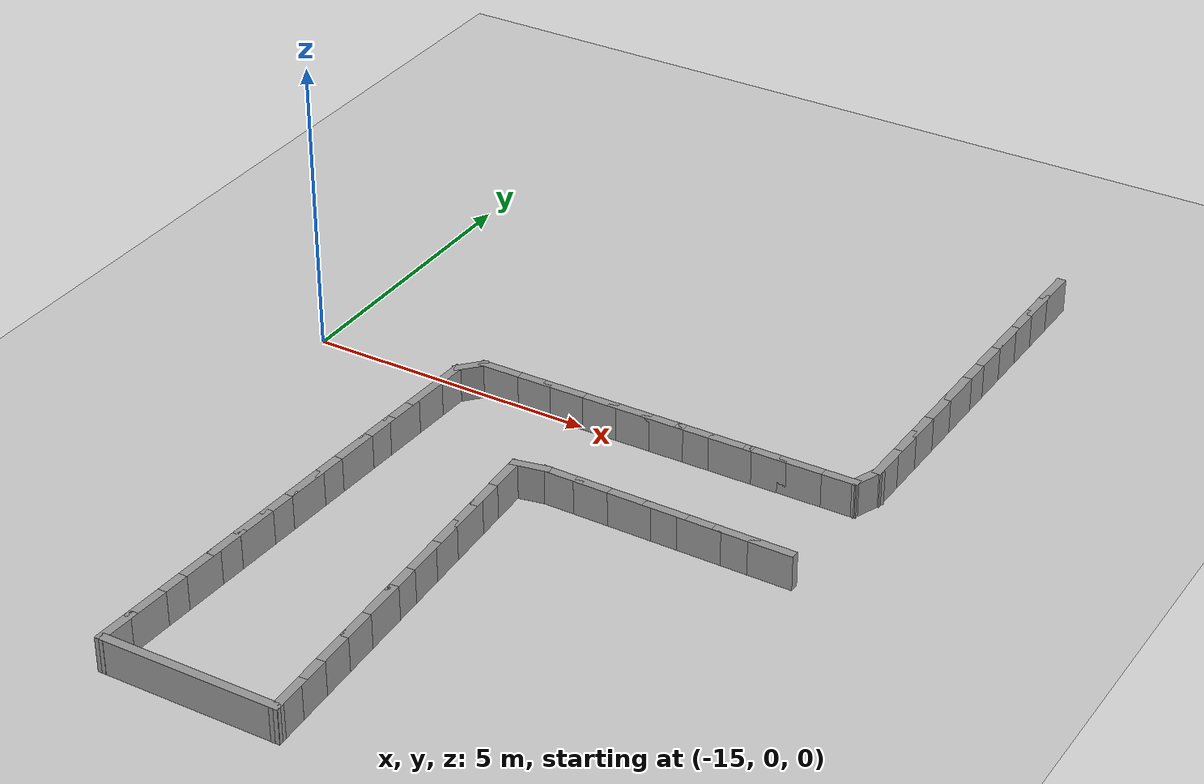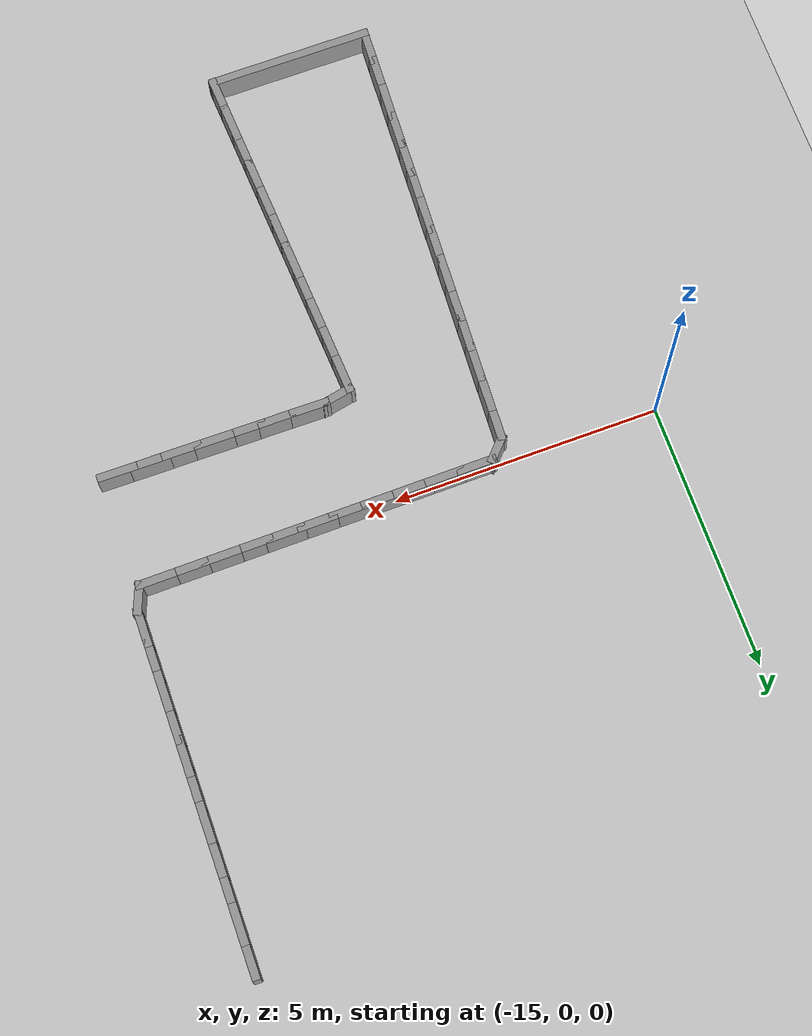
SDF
<sdf version="1.7">
 <world name="default">
  <model name="ground_plane">
   <static>1</static>
   <link name="link">
    <collision name="collision">
     <geometry><plane><normal>0 0 1</normal><size>100 100</size></plane></geometry>
     <surface><friction><ode><mu>100</mu><mu2>50</mu2></ode></friction></surface>
    </collision>
    <visual name="visual">
     <cast_shadows>0</cast_shadows>
     <geometry><plane><normal>0 0 1</normal><size>100 100</size></plane></geometry>
     <material>
      <script><uri>file://media/materials/scripts/gazebo.material</uri><name>Gazebo/Grey</name></script>
     </material>
    </visual>
   </link>
  </model>
  <model name="maze_corridor_easy">
   <link name="Wall_0">
    <collision name="Wall_0_Collision">
     <geometry><box><size>0.7500 0.1500 0.6000</size></box></geometry>
     <pose>0 0 0.3000 0 -0 0</pose>
    </collision>
    <visual name="Wall_0_Visual">
     <pose>0 0 0.3000 0 -0 0</pose>
     <geometry><box><size>0.7500 0.1500 0.6000</size></box></geometry>
     <material>
      <script><uri>file://media/materials/scripts/gazebo.material</uri><name>Gazebo/Grey</name></script>
      <ambient>1 1 1 1</ambient>
     </material>
    </visual>
    <pose>-12.4866 -8.4003 0 0 -0 1.52603</pose>
   </link>
   <link name="Wall_1">
    <collision name="Wall_1_Collision">
     <geometry><box><size>0.7500 0.1500 0.6000</size></box></geometry>
     <pose>0 0 0.3000 0 -0 0</pose>
    </collision>
    <visual name="Wall_1_Visual">
     <pose>0 0 0.3000 0 -0 0</pose>
     <geometry><box><size>0.7500 0.1500 0.6000</size></box></geometry>
     <material>
      <script><uri>file://media/materials/scripts/gazebo.material</uri><name>Gazebo/Grey</name></script>
      <ambient>1 1 1 1</ambient>
     </material>
    </visual>
    <pose>-12.4597 -7.8009 0 0 -0 1.52603</pose>
   </link>
   <link name="Wall_2">
    <collision name="Wall_2_Collision">
     <geometry><box><size>0.7500 0.1500 0.6000</size></box></geometry>
     <pose>0 0 0.3000 0 -0 0</pose>
    </collision>
    <visual name="Wall_2_Visual">
     <pose>0 0 0.3000 0 -0 0</pose>
     <geometry><box><size>0.7500 0.1500 0.6000</size></box></geometry>
     <material>
      <script><uri>file://media/materials/scripts/gazebo.material</uri><name>Gazebo/Grey</name></script>
      <ambient>1 1 1 1</ambient>
     </material>
    </visual>
    <pose>-12.4329 -7.2015 0 0 -0 1.52603</pose>
   </link>
   <link name="Wall_3">
    <collision name="Wall_3_Collision">
     <geometry><box><size>0.7500 0.1500 0.6000</size></box></geometry>
     <pose>0 0 0.3000 0 -0 0</pose>
    </collision>
    <visual name="Wall_3_Visual">
     <pose>0 0 0.3000 0 -0 0</pose>
     <geometry><box><size>0.7500 0.1500 0.6000</size></box></geometry>
     <material>
      <script><uri>file://media/materials/scripts/gazebo.material</uri><name>Gazebo/Grey</name></script>
      <ambient>1 1 1 1</ambient>
     </material>
    </visual>
    <pose>-12.4060 -6.6021 0 0 -0 1.52603</pose>
   </link>
   <link name="Wall_4">
    <collision name="Wall_4_Collision">
     <geometry><box><size>0.7500 0.1500 0.6000</size></box></geometry>
     <pose>0 0 0.3000 0 -0 0</pose>
    </collision>
    <visual name="Wall_4_Visual">
     <pose>0 0 0.3000 0 -0 0</pose>
     <geometry><box><size>0.7500 0.1500 0.6000</size></box></geometry>
     <material>
      <script><uri>file://media/materials/scripts/gazebo.material</uri><name>Gazebo/Grey</name></script>
      <ambient>1 1 1 1</ambient>
     </material>
    </visual>
    <pose>-12.3792 -6.0027 0 0 -0 1.52603</pose>
   </link>
   <link name="Wall_5">
    <collision name="Wall_5_Collision">
     <geometry><box><size>0.7500 0.1500 0.6000</size></box></geometry>
     <pose>0 0 0.3000 0 -0 0</pose>
    </collision>
    <visual name="Wall_5_Visual">
     <pose>0 0 0.3000 0 -0 0</pose>
     <geometry><box><size>0.7500 0.1500 0.6000</size></box></geometry>
     <material>
      <script><uri>file://media/materials/scripts/gazebo.material</uri><name>Gazebo/Grey</name></script>
      <ambient>1 1 1 1</ambient>
     </material>
    </visual>
    <pose>-12.3523 -5.4033 0 0 -0 1.52603</pose>
   </link>
   <link name="Wall_6">
    <collision name="Wall_6_Collision">
     <geometry><box><size>0.7500 0.1500 0.6000</size></box></geometry>
     <pose>0 0 0.3000 0 -0 0</pose>
    </collision>
    <visual name="Wall_6_Visual">
     <pose>0 0 0.3000 0 -0 0</pose>
     <geometry><box><size>0.7500 0.1500 0.6000</size></box></geometry>
     <material>
      <script><uri>file://media/materials/scripts/gazebo.material</uri><name>Gazebo/Grey</name></script>
      <ambient>1 1 1 1</ambient>
     </material>
    </visual>
    <pose>-12.3255 -4.8039 0 0 -0 1.52603</pose>
   </link>
   <link name="Wall_7">
    <collision name="Wall_7_Collision">
     <geometry><box><size>0.7500 0.1500 0.6000</size></box></geometry>
     <pose>0 0 0.3000 0 -0 0</pose>
    </collision>
    <visual name="Wall_7_Visual">
     <pose>0 0 0.3000 0 -0 0</pose>
     <geometry><box><size>0.7500 0.1500 0.6000</size></box></geometry>
     <material>
      <script><uri>file://media/materials/scripts/gazebo.material</uri><name>Gazebo/Grey</name></script>
      <ambient>1 1 1 1</ambient>
     </material>
    </visual>
    <pose>-12.2986 -4.2045 0 0 -0 1.52603</pose>
   </link>
   <link name="Wall_8">
    <collision name="Wall_8_Collision">
     <geometry><box><size>0.7500 0.1500 0.6000</size></box></geometry>
     <pose>0 0 0.3000 0 -0 0</pose>
    </collision>
    <visual name="Wall_8_Visual">
     <pose>0 0 0.3000 0 -0 0</pose>
     <geometry><box><size>0.7500 0.1500 0.6000</size></box></geometry>
     <material>
      <script><uri>file://media/materials/scripts/gazebo.material</uri><name>Gazebo/Grey</name></script>
      <ambient>1 1 1 1</ambient>
     </material>
    </visual>
    <pose>-12.2718 -3.6051 0 0 -0 1.52603</pose>
   </link>
   <link name="Wall_9">
    <collision name="Wall_9_Collision">
     <geometry><box><size>0.7500 0.1500 0.6000</size></box></geometry>
     <pose>0 0 0.3000 0 -0 0</pose>
    </collision>
    <visual name="Wall_9_Visual">
     <pose>0 0 0.3000 0 -0 0</pose>
     <geometry><box><size>0.7500 0.1500 0.6000</size></box></geometry>
     <material>
      <script><uri>file://media/materials/scripts/gazebo.material</uri><name>Gazebo/Grey</name></script>
      <ambient>1 1 1 1</ambient>
     </material>
    </visual>
    <pose>-12.2449 -3.0057 0 0 -0 1.52603</pose>
   </link>
   <link name="Wall_10">
    <collision name="Wall_10_Collision">
     <geometry><box><size>0.7500 0.1500 0.6000</size></box></geometry>
     <pose>0 0 0.3000 0 -0 0</pose>
    </collision>
    <visual name="Wall_10_Visual">
     <pose>0 0 0.3000 0 -0 0</pose>
     <geometry><box><size>0.7500 0.1500 0.6000</size></box></geometry>
     <material>
      <script><uri>file://media/materials/scripts/gazebo.material</uri><name>Gazebo/Grey</name></script>
      <ambient>1 1 1 1</ambient>
     </material>
    </visual>
    <pose>-12.2181 -2.4063 0 0 -0 1.52603</pose>
   </link>
   <link name="Wall_11">
    <collision name="Wall_11_Collision">
     <geometry><box><size>0.7500 0.1500 0.6000</size></box></geometry>
     <pose>0 0 0.3000 0 -0 0</pose>
    </collision>
    <visual name="Wall_11_Visual">
     <pose>0 0 0.3000 0 -0 0</pose>
     <geometry><box><size>0.7500 0.1500 0.6000</size></box></geometry>
     <material>
      <script><uri>file://media/materials/scripts/gazebo.material</uri><name>Gazebo/Grey</name></script>
      <ambient>1 1 1 1</ambient>
     </material>
    </visual>
    <pose>-12.1912 -1.8069 0 0 -0 1.52603</pose>
   </link>
   <link name="Wall_12">
    <collision name="Wall_12_Collision">
     <geometry><box><size>0.7500 0.1500 0.6000</size></box></geometry>
     <pose>0 0 0.3000 0 -0 0</pose>
    </collision>
    <visual name="Wall_12_Visual">
     <pose>0 0 0.3000 0 -0 0</pose>
     <geometry><box><size>0.7500 0.1500 0.6000</size></box></geometry>
     <material>
      <script><uri>file://media/materials/scripts/gazebo.material</uri><name>Gazebo/Grey</name></script>
      <ambient>1 1 1 1</ambient>
     </material>
    </visual>
    <pose>-12.1644 -1.2075 0 0 -0 1.52603</pose>
   </link>
   <link name="Wall_13">
    <collision name="Wall_13_Collision">
     <geometry><box><size>0.7500 0.1500 0.6000</size></box></geometry>
     <pose>0 0 0.3000 0 -0 0</pose>
    </collision>
    <visual name="Wall_13_Visual">
     <pose>0 0 0.3000 0 -0 0</pose>
     <geometry><box><size>0.7500 0.1500 0.6000</size></box></geometry>
     <material>
      <script><uri>file://media/materials/scripts/gazebo.material</uri><name>Gazebo/Grey</name></script>
      <ambient>1 1 1 1</ambient>
     </material>
    </visual>
    <pose>-12.1376 -0.6081 0 0 -0 1.52603</pose>
   </link>
   <link name="Wall_14">
    <collision name="Wall_14_Collision">
     <geometry><box><size>0.5859 0.1500 0.6000</size></box></geometry>
     <pose>0 0 0.3000 0 -0 0</pose>
    </collision>
    <visual name="Wall_14_Visual">
     <pose>0 0 0.3000 0 -0 0</pose>
     <geometry><box><size>0.5859 0.1500 0.6000</size></box></geometry>
     <material>
      <script><uri>file://media/materials/scripts/gazebo.material</uri><name>Gazebo/Grey</name></script>
      <ambient>1 1 1 1</ambient>
     </material>
    </visual>
    <pose>-11.9759 -0.1487 0 0 -0 0.82276</pose>
   </link>
   <link name="Wall_15">
    <collision name="Wall_15_Collision">
     <geometry><box><size>0.7500 0.1500 0.6000</size></box></geometry>
     <pose>0 0 0.3000 0 -0 0</pose>
    </collision>
    <visual name="Wall_15_Visual">
     <pose>0 0 0.3000 0 -0 0</pose>
     <geometry><box><size>0.7500 0.1500 0.6000</size></box></geometry>
     <material>
      <script><uri>file://media/materials/scripts/gazebo.material</uri><name>Gazebo/Grey</name></script>
      <ambient>1 1 1 1</ambient>
     </material>
    </visual>
    <pose>-11.5277 0.0133 0 0 -0 0.00733</pose>
   </link>
   <link name="Wall_16">
    <collision name="Wall_16_Collision">
     <geometry><box><size>0.7500 0.1500 0.6000</size></box></geometry>
     <pose>0 0 0.3000 0 -0 0</pose>
    </collision>
    <visual name="Wall_16_Visual">
     <pose>0 0 0.3000 0 -0 0</pose>
     <geometry><box><size>0.7500 0.1500 0.6000</size></box></geometry>
     <material>
      <script><uri>file://media/materials/scripts/gazebo.material</uri><name>Gazebo/Grey</name></script>
      <ambient>1 1 1 1</ambient>
     </material>
    </visual>
    <pose>-10.9277 0.0177 0 0 -0 0.00733</pose>
   </link>
   <link name="Wall_17">
    <collision name="Wall_17_Collision">
     <geometry><box><size>0.7500 0.1500 0.6000</size></box></geometry>
     <pose>0 0 0.3000 0 -0 0</pose>
    </collision>
    <visual name="Wall_17_Visual">
     <pose>0 0 0.3000 0 -0 0</pose>
     <geometry><box><size>0.7500 0.1500 0.6000</size></box></geometry>
     <material>
      <script><uri>file://media/materials/scripts/gazebo.material</uri><name>Gazebo/Grey</name></script>
      <ambient>1 1 1 1</ambient>
     </material>
    </visual>
    <pose>-10.3277 0.0221 0 0 -0 0.00733</pose>
   </link>
   <link name="Wall_18">
    <collision name="Wall_18_Collision">
     <geometry><box><size>0.7500 0.1500 0.6000</size></box></geometry>
     <pose>0 0 0.3000 0 -0 0</pose>
    </collision>
    <visual name="Wall_18_Visual">
     <pose>0 0 0.3000 0 -0 0</pose>
     <geometry><box><size>0.7500 0.1500 0.6000</size></box></geometry>
     <material>
      <script><uri>file://media/materials/scripts/gazebo.material</uri><name>Gazebo/Grey</name></script>
      <ambient>1 1 1 1</ambient>
     </material>
    </visual>
    <pose>-9.7277 0.0265 0 0 -0 0.00733</pose>
   </link>
   <link name="Wall_19">
    <collision name="Wall_19_Collision">
     <geometry><box><size>0.7500 0.1500 0.6000</size></box></geometry>
     <pose>0 0 0.3000 0 -0 0</pose>
    </collision>
    <visual name="Wall_19_Visual">
     <pose>0 0 0.3000 0 -0 0</pose>
     <geometry><box><size>0.7500 0.1500 0.6000</size></box></geometry>
     <material>
      <script><uri>file://media/materials/scripts/gazebo.material</uri><name>Gazebo/Grey</name></script>
      <ambient>1 1 1 1</ambient>
     </material>
    </visual>
    <pose>-9.1277 0.0309 0 0 -0 0.00733</pose>
   </link>
   <link name="Wall_20">
    <collision name="Wall_20_Collision">
     <geometry><box><size>0.7500 0.1500 0.6000</size></box></geometry>
     <pose>0 0 0.3000 0 -0 0</pose>
    </collision>
    <visual name="Wall_20_Visual">
     <pose>0 0 0.3000 0 -0 0</pose>
     <geometry><box><size>0.7500 0.1500 0.6000</size></box></geometry>
     <material>
      <script><uri>file://media/materials/scripts/gazebo.material</uri><name>Gazebo/Grey</name></script>
      <ambient>1 1 1 1</ambient>
     </material>
    </visual>
    <pose>-8.5277 0.0353 0 0 -0 0.00733</pose>
   </link>
   <link name="Wall_21">
    <collision name="Wall_21_Collision">
     <geometry><box><size>0.7500 0.1500 0.6000</size></box></geometry>
     <pose>0 0 0.3000 0 -0 0</pose>
    </collision>
    <visual name="Wall_21_Visual">
     <pose>0 0 0.3000 0 -0 0</pose>
     <geometry><box><size>0.7500 0.1500 0.6000</size></box></geometry>
     <material>
      <script><uri>file://media/materials/scripts/gazebo.material</uri><name>Gazebo/Grey</name></script>
      <ambient>1 1 1 1</ambient>
     </material>
    </visual>
    <pose>-7.9278 0.0397 0 0 -0 0.00733</pose>
   </link>
   <link name="Wall_22">
    <collision name="Wall_22_Collision">
     <geometry><box><size>0.7500 0.1500 0.6000</size></box></geometry>
     <pose>0 0 0.3000 0 -0 0</pose>
    </collision>
    <visual name="Wall_22_Visual">
     <pose>0 0 0.3000 0 -0 0</pose>
     <geometry><box><size>0.7500 0.1500 0.6000</size></box></geometry>
     <material>
      <script><uri>file://media/materials/scripts/gazebo.material</uri><name>Gazebo/Grey</name></script>
      <ambient>1 1 1 1</ambient>
     </material>
    </visual>
    <pose>-7.3278 0.0440 0 0 -0 0.00733</pose>
   </link>
   <link name="Wall_23">
    <collision name="Wall_23_Collision">
     <geometry><box><size>0.7500 0.1500 0.6000</size></box></geometry>
     <pose>0 0 0.3000 0 -0 0</pose>
    </collision>
    <visual name="Wall_23_Visual">
     <pose>0 0 0.3000 0 -0 0</pose>
     <geometry><box><size>0.7500 0.1500 0.6000</size></box></geometry>
     <material>
      <script><uri>file://media/materials/scripts/gazebo.material</uri><name>Gazebo/Grey</name></script>
      <ambient>1 1 1 1</ambient>
     </material>
    </visual>
    <pose>-6.7278 0.0484 0 0 -0 0.00733</pose>
   </link>
   <link name="Wall_24">
    <collision name="Wall_24_Collision">
     <geometry><box><size>0.7500 0.1500 0.6000</size></box></geometry>
     <pose>0 0 0.3000 0 -0 0</pose>
    </collision>
    <visual name="Wall_24_Visual">
     <pose>0 0 0.3000 0 -0 0</pose>
     <geometry><box><size>0.7500 0.1500 0.6000</size></box></geometry>
     <material>
      <script><uri>file://media/materials/scripts/gazebo.material</uri><name>Gazebo/Grey</name></script>
      <ambient>1 1 1 1</ambient>
     </material>
    </visual>
    <pose>-6.1278 0.0528 0 0 -0 0.00733</pose>
   </link>
   <link name="Wall_25">
    <collision name="Wall_25_Collision">
     <geometry><box><size>0.7500 0.1500 0.6000</size></box></geometry>
     <pose>0 0 0.3000 0 -0 0</pose>
    </collision>
    <visual name="Wall_25_Visual">
     <pose>0 0 0.3000 0 -0 0</pose>
     <geometry><box><size>0.7500 0.1500 0.6000</size></box></geometry>
     <material>
      <script><uri>file://media/materials/scripts/gazebo.material</uri><name>Gazebo/Grey</name></script>
      <ambient>1 1 1 1</ambient>
     </material>
    </visual>
    <pose>-5.5278 0.0572 0 0 -0 0.00733</pose>
   </link>
   <link name="Wall_26">
    <collision name="Wall_26_Collision">
     <geometry><box><size>0.6167 0.1500 0.6000</size></box></geometry>
     <pose>0 0 0.3000 0 -0 0</pose>
    </collision>
    <visual name="Wall_26_Visual">
     <pose>0 0 0.3000 0 -0 0</pose>
     <geometry><box><size>0.6167 0.1500 0.6000</size></box></geometry>
     <material>
      <script><uri>file://media/materials/scripts/gazebo.material</uri><name>Gazebo/Grey</name></script>
      <ambient>1 1 1 1</ambient>
     </material>
    </visual>
    <pose>-5.1420 0.2764 0 0 -0 1.19421</pose>
   </link>
   <link name="Wall_27">
    <collision name="Wall_27_Collision">
     <geometry><box><size>0.7500 0.1500 0.6000</size></box></geometry>
     <pose>0 0 0.3000 0 -0 0</pose>
    </collision>
    <visual name="Wall_27_Visual">
     <pose>0 0 0.3000 0 -0 0</pose>
     <geometry><box><size>0.7500 0.1500 0.6000</size></box></geometry>
     <material>
      <script><uri>file://media/materials/scripts/gazebo.material</uri><name>Gazebo/Grey</name></script>
      <ambient>1 1 1 1</ambient>
     </material>
    </visual>
    <pose>-5.0531 0.7934 0 0 -0 1.56048</pose>
   </link>
   <link name="Wall_28">
    <collision name="Wall_28_Collision">
     <geometry><box><size>0.7500 0.1500 0.6000</size></box></geometry>
     <pose>0 0 0.3000 0 -0 0</pose>
    </collision>
    <visual name="Wall_28_Visual">
     <pose>0 0 0.3000 0 -0 0</pose>
     <geometry><box><size>0.7500 0.1500 0.6000</size></box></geometry>
     <material>
      <script><uri>file://media/materials/scripts/gazebo.material</uri><name>Gazebo/Grey</name></script>
      <ambient>1 1 1 1</ambient>
     </material>
    </visual>
    <pose>-5.0469 1.3934 0 0 -0 1.56048</pose>
   </link>
   <link name="Wall_29">
    <collision name="Wall_29_Collision">
     <geometry><box><size>0.7500 0.1500 0.6000</size></box></geometry>
     <pose>0 0 0.3000 0 -0 0</pose>
    </collision>
    <visual name="Wall_29_Visual">
     <pose>0 0 0.3000 0 -0 0</pose>
     <geometry><box><size>0.7500 0.1500 0.6000</size></box></geometry>
     <material>
      <script><uri>file://media/materials/scripts/gazebo.material</uri><name>Gazebo/Grey</name></script>
      <ambient>1 1 1 1</ambient>
     </material>
    </visual>
    <pose>-5.0407 1.9934 0 0 -0 1.56048</pose>
   </link>
   <link name="Wall_30">
    <collision name="Wall_30_Collision">
     <geometry><box><size>0.7500 0.1500 0.6000</size></box></geometry>
     <pose>0 0 0.3000 0 -0 0</pose>
    </collision>
    <visual name="Wall_30_Visual">
     <pose>0 0 0.3000 0 -0 0</pose>
     <geometry><box><size>0.7500 0.1500 0.6000</size></box></geometry>
     <material>
      <script><uri>file://media/materials/scripts/gazebo.material</uri><name>Gazebo/Grey</name></script>
      <ambient>1 1 1 1</ambient>
     </material>
    </visual>
    <pose>-5.0345 2.5933 0 0 -0 1.56048</pose>
   </link>
   <link name="Wall_31">
    <collision name="Wall_31_Collision">
     <geometry><box><size>0.7500 0.1500 0.6000</size></box></geometry>
     <pose>0 0 0.3000 0 -0 0</pose>
    </collision>
    <visual name="Wall_31_Visual">
     <pose>0 0 0.3000 0 -0 0</pose>
     <geometry><box><size>0.7500 0.1500 0.6000</size></box></geometry>
     <material>
      <script><uri>file://media/materials/scripts/gazebo.material</uri><name>Gazebo/Grey</name></script>
      <ambient>1 1 1 1</ambient>
     </material>
    </visual>
    <pose>-5.0283 3.1933 0 0 -0 1.56048</pose>
   </link>
   <link name="Wall_32">
    <collision name="Wall_32_Collision">
     <geometry><box><size>0.7500 0.1500 0.6000</size></box></geometry>
     <pose>0 0 0.3000 0 -0 0</pose>
    </collision>
    <visual name="Wall_32_Visual">
     <pose>0 0 0.3000 0 -0 0</pose>
     <geometry><box><size>0.7500 0.1500 0.6000</size></box></geometry>
     <material>
      <script><uri>file://media/materials/scripts/gazebo.material</uri><name>Gazebo/Grey</name></script>
      <ambient>1 1 1 1</ambient>
     </material>
    </visual>
    <pose>-5.0222 3.7933 0 0 -0 1.56048</pose>
   </link>
   <link name="Wall_33">
    <collision name="Wall_33_Collision">
     <geometry><box><size>0.7500 0.1500 0.6000</size></box></geometry>
     <pose>0 0 0.3000 0 -0 0</pose>
    </collision>
    <visual name="Wall_33_Visual">
     <pose>0 0 0.3000 0 -0 0</pose>
     <geometry><box><size>0.7500 0.1500 0.6000</size></box></geometry>
     <material>
      <script><uri>file://media/materials/scripts/gazebo.material</uri><name>Gazebo/Grey</name></script>
      <ambient>1 1 1 1</ambient>
     </material>
    </visual>
    <pose>-5.0160 4.3932 0 0 -0 1.56048</pose>
   </link>
   <link name="Wall_34">
    <collision name="Wall_34_Collision">
     <geometry><box><size>0.7500 0.1500 0.6000</size></box></geometry>
     <pose>0 0 0.3000 0 -0 0</pose>
    </collision>
    <visual name="Wall_34_Visual">
     <pose>0 0 0.3000 0 -0 0</pose>
     <geometry><box><size>0.7500 0.1500 0.6000</size></box></geometry>
     <material>
      <script><uri>file://media/materials/scripts/gazebo.material</uri><name>Gazebo/Grey</name></script>
      <ambient>1 1 1 1</ambient>
     </material>
    </visual>
    <pose>-5.0098 4.9932 0 0 -0 1.56048</pose>
   </link>
   <link name="Wall_35">
    <collision name="Wall_35_Collision">
     <geometry><box><size>0.7500 0.1500 0.6000</size></box></geometry>
     <pose>0 0 0.3000 0 -0 0</pose>
    </collision>
    <visual name="Wall_35_Visual">
     <pose>0 0 0.3000 0 -0 0</pose>
     <geometry><box><size>0.7500 0.1500 0.6000</size></box></geometry>
     <material>
      <script><uri>file://media/materials/scripts/gazebo.material</uri><name>Gazebo/Grey</name></script>
      <ambient>1 1 1 1</ambient>
     </material>
    </visual>
    <pose>-5.0036 5.5932 0 0 -0 1.56048</pose>
   </link>
   <link name="Wall_36">
    <collision name="Wall_36_Collision">
     <geometry><box><size>0.7500 0.1500 0.6000</size></box></geometry>
     <pose>0 0 0.3000 0 -0 0</pose>
    </collision>
    <visual name="Wall_36_Visual">
     <pose>0 0 0.3000 0 -0 0</pose>
     <geometry><box><size>0.7500 0.1500 0.6000</size></box></geometry>
     <material>
      <script><uri>file://media/materials/scripts/gazebo.material</uri><name>Gazebo/Grey</name></script>
      <ambient>1 1 1 1</ambient>
     </material>
    </visual>
    <pose>-4.9974 6.1932 0 0 -0 1.56048</pose>
   </link>
   <link name="Wall_37">
    <collision name="Wall_37_Collision">
     <geometry><box><size>0.7500 0.1500 0.6000</size></box></geometry>
     <pose>0 0 0.3000 0 -0 0</pose>
    </collision>
    <visual name="Wall_37_Visual">
     <pose>0 0 0.3000 0 -0 0</pose>
     <geometry><box><size>0.7500 0.1500 0.6000</size></box></geometry>
     <material>
      <script><uri>file://media/materials/scripts/gazebo.material</uri><name>Gazebo/Grey</name></script>
      <ambient>1 1 1 1</ambient>
     </material>
    </visual>
    <pose>-4.9912 6.7931 0 0 -0 1.56048</pose>
   </link>
   <link name="Wall_93">
    <collision name="Wall_93_Collision">
     <geometry><box><size>0.7500 0.1500 0.6000</size></box></geometry>
     <pose>0 0 0.3000 0 -0 0</pose>
    </collision>
    <visual name="Wall_93_Visual">
     <pose>0 0 0.3000 0 -0 0</pose>
     <geometry><box><size>0.7500 0.1500 0.6000</size></box></geometry>
     <material>
      <script><uri>file://media/materials/scripts/gazebo.material</uri><name>Gazebo/Grey</name></script>
      <ambient>1 1 1 1</ambient>
     </material>
    </visual>
    <pose>-9.5175 -8.4005 0 0 -0 1.62903</pose>
   </link>
   <link name="Wall_94">
    <collision name="Wall_94_Collision">
     <geometry><box><size>0.7500 0.1500 0.6000</size></box></geometry>
     <pose>0 0 0.3000 0 -0 0</pose>
    </collision>
    <visual name="Wall_94_Visual">
     <pose>0 0 0.3000 0 -0 0</pose>
     <geometry><box><size>0.7500 0.1500 0.6000</size></box></geometry>
     <material>
      <script><uri>file://media/materials/scripts/gazebo.material</uri><name>Gazebo/Grey</name></script>
      <ambient>1 1 1 1</ambient>
     </material>
    </visual>
    <pose>-9.5524 -7.8015 0 0 -0 1.62903</pose>
   </link>
   <link name="Wall_95">
    <collision name="Wall_95_Collision">
     <geometry><box><size>0.7500 0.1500 0.6000</size></box></geometry>
     <pose>0 0 0.3000 0 -0 0</pose>
    </collision>
    <visual name="Wall_95_Visual">
     <pose>0 0 0.3000 0 -0 0</pose>
     <geometry><box><size>0.7500 0.1500 0.6000</size></box></geometry>
     <material>
      <script><uri>file://media/materials/scripts/gazebo.material</uri><name>Gazebo/Grey</name></script>
      <ambient>1 1 1 1</ambient>
     </material>
    </visual>
    <pose>-9.5873 -7.2025 0 0 -0 1.62903</pose>
   </link>
   <link name="Wall_96">
    <collision name="Wall_96_Collision">
     <geometry><box><size>0.7500 0.1500 0.6000</size></box></geometry>
     <pose>0 0 0.3000 0 -0 0</pose>
    </collision>
    <visual name="Wall_96_Visual">
     <pose>0 0 0.3000 0 -0 0</pose>
     <geometry><box><size>0.7500 0.1500 0.6000</size></box></geometry>
     <material>
      <script><uri>file://media/materials/scripts/gazebo.material</uri><name>Gazebo/Grey</name></script>
      <ambient>1 1 1 1</ambient>
     </material>
    </visual>
    <pose>-9.6222 -6.6036 0 0 -0 1.62903</pose>
   </link>
   <link name="Wall_97">
    <collision name="Wall_97_Collision">
     <geometry><box><size>0.7500 0.1500 0.6000</size></box></geometry>
     <pose>0 0 0.3000 0 -0 0</pose>
    </collision>
    <visual name="Wall_97_Visual">
     <pose>0 0 0.3000 0 -0 0</pose>
     <geometry><box><size>0.7500 0.1500 0.6000</size></box></geometry>
     <material>
      <script><uri>file://media/materials/scripts/gazebo.material</uri><name>Gazebo/Grey</name></script>
      <ambient>1 1 1 1</ambient>
     </material>
    </visual>
    <pose>-9.6571 -6.0046 0 0 -0 1.62903</pose>
   </link>
   <link name="Wall_98">
    <collision name="Wall_98_Collision">
     <geometry><box><size>0.7500 0.1500 0.6000</size></box></geometry>
     <pose>0 0 0.3000 0 -0 0</pose>
    </collision>
    <visual name="Wall_98_Visual">
     <pose>0 0 0.3000 0 -0 0</pose>
     <geometry><box><size>0.7500 0.1500 0.6000</size></box></geometry>
     <material>
      <script><uri>file://media/materials/scripts/gazebo.material</uri><name>Gazebo/Grey</name></script>
      <ambient>1 1 1 1</ambient>
     </material>
    </visual>
    <pose>-9.6921 -5.4056 0 0 -0 1.62903</pose>
   </link>
   <link name="Wall_99">
    <collision name="Wall_99_Collision">
     <geometry><box><size>0.7500 0.1500 0.6000</size></box></geometry>
     <pose>0 0 0.3000 0 -0 0</pose>
    </collision>
    <visual name="Wall_99_Visual">
     <pose>0 0 0.3000 0 -0 0</pose>
     <geometry><box><size>0.7500 0.1500 0.6000</size></box></geometry>
     <material>
      <script><uri>file://media/materials/scripts/gazebo.material</uri><name>Gazebo/Grey</name></script>
      <ambient>1 1 1 1</ambient>
     </material>
    </visual>
    <pose>-9.7270 -4.8066 0 0 -0 1.62903</pose>
   </link>
   <link name="Wall_100">
    <collision name="Wall_100_Collision">
     <geometry><box><size>0.7500 0.1500 0.6000</size></box></geometry>
     <pose>0 0 0.3000 0 -0 0</pose>
    </collision>
    <visual name="Wall_100_Visual">
     <pose>0 0 0.3000 0 -0 0</pose>
     <geometry><box><size>0.7500 0.1500 0.6000</size></box></geometry>
     <material>
      <script><uri>file://media/materials/scripts/gazebo.material</uri><name>Gazebo/Grey</name></script>
      <ambient>1 1 1 1</ambient>
     </material>
    </visual>
    <pose>-9.7619 -4.2076 0 0 -0 1.62903</pose>
   </link>
   <link name="Wall_101">
    <collision name="Wall_101_Collision">
     <geometry><box><size>0.7500 0.1500 0.6000</size></box></geometry>
     <pose>0 0 0.3000 0 -0 0</pose>
    </collision>
    <visual name="Wall_101_Visual">
     <pose>0 0 0.3000 0 -0 0</pose>
     <geometry><box><size>0.7500 0.1500 0.6000</size></box></geometry>
     <material>
      <script><uri>file://media/materials/scripts/gazebo.material</uri><name>Gazebo/Grey</name></script>
      <ambient>1 1 1 1</ambient>
     </material>
    </visual>
    <pose>-9.7968 -3.6086 0 0 -0 1.62903</pose>
   </link>
   <link name="Wall_102">
    <collision name="Wall_102_Collision">
     <geometry><box><size>0.7500 0.1500 0.6000</size></box></geometry>
     <pose>0 0 0.3000 0 -0 0</pose>
    </collision>
    <visual name="Wall_102_Visual">
     <pose>0 0 0.3000 0 -0 0</pose>
     <geometry><box><size>0.7500 0.1500 0.6000</size></box></geometry>
     <material>
      <script><uri>file://media/materials/scripts/gazebo.material</uri><name>Gazebo/Grey</name></script>
      <ambient>1 1 1 1</ambient>
     </material>
    </visual>
    <pose>-9.8318 -3.0097 0 0 -0 1.62903</pose>
   </link>
   <link name="Wall_103">
    <collision name="Wall_103_Collision">
     <geometry><box><size>0.7500 0.1500 0.6000</size></box></geometry>
     <pose>0 0 0.3000 0 -0 0</pose>
    </collision>
    <visual name="Wall_103_Visual">
     <pose>0 0 0.3000 0 -0 0</pose>
     <geometry><box><size>0.7500 0.1500 0.6000</size></box></geometry>
     <material>
      <script><uri>file://media/materials/scripts/gazebo.material</uri><name>Gazebo/Grey</name></script>
      <ambient>1 1 1 1</ambient>
     </material>
    </visual>
    <pose>-9.8667 -2.4107 0 0 -0 1.62903</pose>
   </link>
   <link name="Wall_104">
    <collision name="Wall_104_Collision">
     <geometry><box><size>0.6514 0.1500 0.6000</size></box></geometry>
     <pose>0 0 0.3000 0 -0 0</pose>
    </collision>
    <visual name="Wall_104_Visual">
     <pose>0 0 0.3000 0 -0 0</pose>
     <geometry><box><size>0.6514 0.1500 0.6000</size></box></geometry>
     <material>
      <script><uri>file://media/materials/scripts/gazebo.material</uri><name>Gazebo/Grey</name></script>
      <ambient>1 1 1 1</ambient>
     </material>
    </visual>
    <pose>-9.6383 -2.0619 0 0 -0 0.19768</pose>
   </link>
   <link name="Wall_105">
    <collision name="Wall_105_Collision">
     <geometry><box><size>0.7500 0.1500 0.6000</size></box></geometry>
     <pose>0 0 0.3000 0 -0 0</pose>
    </collision>
    <visual name="Wall_105_Visual">
     <pose>0 0 0.3000 0 -0 0</pose>
     <geometry><box><size>0.7500 0.1500 0.6000</size></box></geometry>
     <material>
      <script><uri>file://media/materials/scripts/gazebo.material</uri><name>Gazebo/Grey</name></script>
      <ambient>1 1 1 1</ambient>
     </material>
    </visual>
    <pose>-9.0925 -2.0149 0 0 -0 -0.00743</pose>
   </link>
   <link name="Wall_106">
    <collision name="Wall_106_Collision">
     <geometry><box><size>0.7500 0.1500 0.6000</size></box></geometry>
     <pose>0 0 0.3000 0 -0 0</pose>
    </collision>
    <visual name="Wall_106_Visual">
     <pose>0 0 0.3000 0 -0 0</pose>
     <geometry><box><size>0.7500 0.1500 0.6000</size></box></geometry>
     <material>
      <script><uri>file://media/materials/scripts/gazebo.material</uri><name>Gazebo/Grey</name></script>
      <ambient>1 1 1 1</ambient>
     </material>
    </visual>
    <pose>-8.4925 -2.0194 0 0 -0 -0.00743</pose>
   </link>
   <link name="Wall_107">
    <collision name="Wall_107_Collision">
     <geometry><box><size>0.7500 0.1500 0.6000</size></box></geometry>
     <pose>0 0 0.3000 0 -0 0</pose>
    </collision>
    <visual name="Wall_107_Visual">
     <pose>0 0 0.3000 0 -0 0</pose>
     <geometry><box><size>0.7500 0.1500 0.6000</size></box></geometry>
     <material>
      <script><uri>file://media/materials/scripts/gazebo.material</uri><name>Gazebo/Grey</name></script>
      <ambient>1 1 1 1</ambient>
     </material>
    </visual>
    <pose>-7.8925 -2.0239 0 0 -0 -0.00743</pose>
   </link>
   <link name="Wall_108">
    <collision name="Wall_108_Collision">
     <geometry><box><size>0.7500 0.1500 0.6000</size></box></geometry>
     <pose>0 0 0.3000 0 -0 0</pose>
    </collision>
    <visual name="Wall_108_Visual">
     <pose>0 0 0.3000 0 -0 0</pose>
     <geometry><box><size>0.7500 0.1500 0.6000</size></box></geometry>
     <material>
      <script><uri>file://media/materials/scripts/gazebo.material</uri><name>Gazebo/Grey</name></script>
      <ambient>1 1 1 1</ambient>
     </material>
    </visual>
    <pose>-7.2925 -2.0283 0 0 -0 -0.00743</pose>
   </link>
   <link name="Wall_109">
    <collision name="Wall_109_Collision">
     <geometry><box><size>0.7500 0.1500 0.6000</size></box></geometry>
     <pose>0 0 0.3000 0 -0 0</pose>
    </collision>
    <visual name="Wall_109_Visual">
     <pose>0 0 0.3000 0 -0 0</pose>
     <geometry><box><size>0.7500 0.1500 0.6000</size></box></geometry>
     <material>
      <script><uri>file://media/materials/scripts/gazebo.material</uri><name>Gazebo/Grey</name></script>
      <ambient>1 1 1 1</ambient>
     </material>
    </visual>
    <pose>-6.6925 -2.0328 0 0 -0 -0.00743</pose>
   </link>
   <link name="Wall_110">
    <collision name="Wall_110_Collision">
     <geometry><box><size>0.7500 0.1500 0.6000</size></box></geometry>
     <pose>0 0 0.3000 0 -0 0</pose>
    </collision>
    <visual name="Wall_110_Visual">
     <pose>0 0 0.3000 0 -0 0</pose>
     <geometry><box><size>0.7500 0.1500 0.6000</size></box></geometry>
     <material>
      <script><uri>file://media/materials/scripts/gazebo.material</uri><name>Gazebo/Grey</name></script>
      <ambient>1 1 1 1</ambient>
     </material>
    </visual>
    <pose>-6.0925 -2.0372 0 0 -0 -0.00743</pose>
   </link>
   <link name="Wall_111">
    <collision name="Wall_111_Collision">
     <geometry><box><size>0.7500 0.1500 0.6000</size></box></geometry>
     <pose>0 0 0.3000 0 -0 0</pose>
    </collision>
    <visual name="Wall_111_Visual">
     <pose>0 0 0.3000 0 -0 0</pose>
     <geometry><box><size>0.7500 0.1500 0.6000</size></box></geometry>
     <material>
      <script><uri>file://media/materials/scripts/gazebo.material</uri><name>Gazebo/Grey</name></script>
      <ambient>1 1 1 1</ambient>
     </material>
    </visual>
    <pose>-5.4926 -2.0417 0 0 -0 -0.00743</pose>
   </link>
   <link name="Wall_172">
    <collision name="Wall_172_Collision">
     <geometry><box><size>3.1500 0.1500 0.6000</size></box></geometry>
     <pose>0 0 0.3000 0 -0 0</pose>
    </collision>
    <visual name="Wall_172_Visual">
     <pose>0 0 0.3000 0 -0 0</pose>
     <geometry><box><size>3.1500 0.1500 0.6000</size></box></geometry>
     <material>
      <script><uri>file://media/materials/scripts/gazebo.material</uri><name>Gazebo/Grey</name></script>
      <ambient>1 1 1 1</ambient>
     </material>
    </visual>
    <pose>-11.0000 -8.7000 0 0 -0 3.14159</pose>
   </link>
   <static>1</static>
  </model>
 </world>
</sdf>
